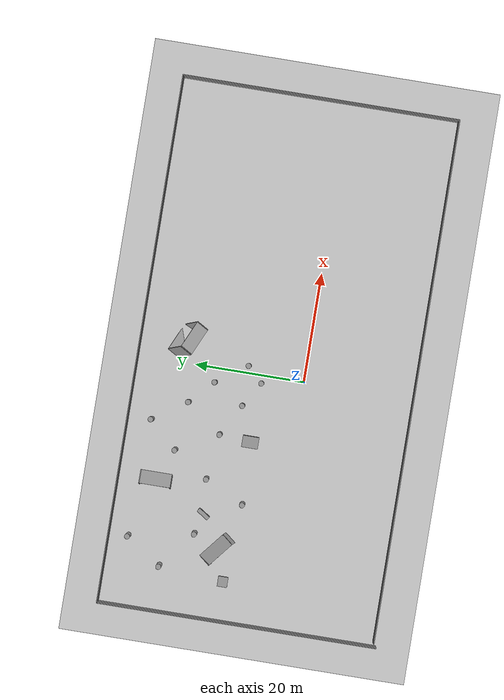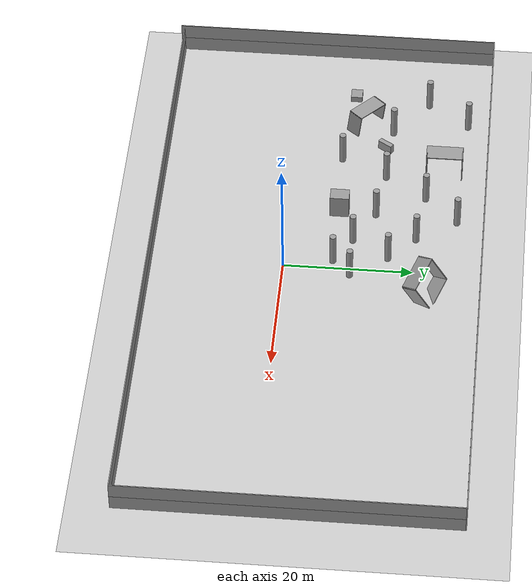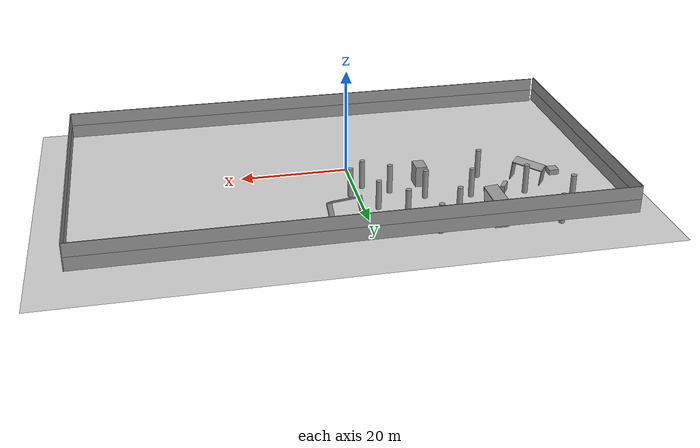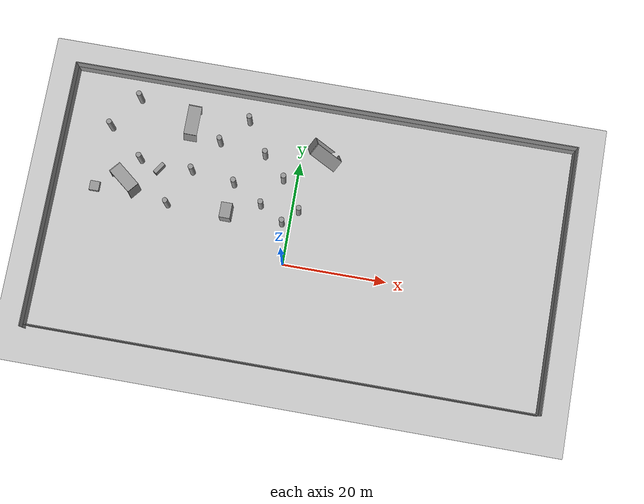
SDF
<sdf version="1.6">
 <world name="default">
  <model name="ground_plane">
   <static>1</static>
   <link name="link">
    <collision name="collision">
     <geometry><plane><normal>0 0 1</normal><size>100 100</size></plane></geometry>
     <surface><friction><ode><mu>100</mu><mu2>50</mu2></ode></friction></surface>
    </collision>
    <visual name="visual">
     <cast_shadows>0</cast_shadows>
     <geometry><plane><normal>0 0 1</normal><size>100 100</size></plane></geometry>
     <material>
      <script><uri>file://media/materials/scripts/gazebo.material</uri><name>Gazebo/Grey</name></script>
     </material>
    </visual>
   </link>
  </model>
  <model name="unit_cylinder_clone_9">
   <pose>1.3235 10.3758 2.75253 0 -0 0.004596</pose>
   <link name="link">
    <inertial>
     <mass>1</mass>
     <inertia><ixx>0.145833</ixx><ixy>0</ixy><ixz>0</ixz><iyy>0.145833</iyy><iyz>0</iyz><izz>0.125</izz></inertia>
    </inertial>
    <collision name="collision">
     <geometry><cylinder><radius>0.5</radius><length>5.50507</length></cylinder></geometry>
    </collision>
    <visual name="visual">
     <geometry><cylinder><radius>0.5</radius><length>5.50507</length></cylinder></geometry>
     <material>
      <script><name>Gazebo/Grey</name><uri>file://media/materials/scripts/gazebo.material</uri></script>
     </material>
    </visual>
   </link>
  </model>
  <model name="unit_cylinder_clone_9_clone">
   <pose>-1.44484 7.61062 2.75253 0 -0 0.00532</pose>
   <link name="link">
    <inertial>
     <mass>1</mass>
     <inertia><ixx>0.145833</ixx><ixy>0</ixy><ixz>0</ixz><iyy>0.145833</iyy><iyz>0</iyz><izz>0.125</izz></inertia>
    </inertial>
    <collision name="collision">
     <geometry><cylinder><radius>0.5</radius><length>5.50507</length></cylinder></geometry>
    </collision>
    <visual name="visual">
     <geometry><cylinder><radius>0.5</radius><length>5.50507</length></cylinder></geometry>
     <material>
      <script><name>Gazebo/Grey</name><uri>file://media/materials/scripts/gazebo.material</uri></script>
     </material>
    </visual>
   </link>
  </model>
  <model name="unit_cylinder_clone_9_clone_2">
   <pose>-5.99307 10.366 2.75253 0 -0 0.005196</pose>
   <link name="link">
    <inertial>
     <mass>1</mass>
     <inertia><ixx>0.145833</ixx><ixy>0</ixy><ixz>0</ixz><iyy>0.145833</iyy><iyz>0</iyz><izz>0.125</izz></inertia>
    </inertial>
    <collision name="collision">
     <geometry><cylinder><radius>0.5</radius><length>5.50507</length></cylinder></geometry>
    </collision>
    <visual name="visual">
     <geometry><cylinder><radius>0.5</radius><length>5.50507</length></cylinder></geometry>
     <material>
      <script><name>Gazebo/Grey</name><uri>file://media/materials/scripts/gazebo.material</uri></script>
     </material>
    </visual>
   </link>
  </model>
  <model name="unit_box_2">
   <pose>-12.2461 7.859 1.95434 1e-06 0 -0.000359</pose>
   <link name="link">
    <inertial>
     <mass>1</mass>
     <inertia>
      <ixx>0.166667</ixx>
      <ixy>0</ixy>
      <ixz>0</ixz>
      <iyy>0.166667</iyy>
      <iyz>0</iyz>
      <izz>0.166667</izz>
     </inertia>
    </inertial>
    <collision name="collision"><geometry><box><size>2.10727 2.95919 3.90868</size></box></geometry></collision>
    <visual name="visual">
     <geometry><box><size>2.10727 2.95919 3.90868</size></box></geometry>
     <material>
      <script><name>Gazebo/Grey</name><uri>file://media/materials/scripts/gazebo.material</uri></script>
     </material>
    </visual>
   </link>
  </model>
  <model name="unit_cylinder_clone_9_clone_5_clone_1">
   <pose>-11.7903 13.5739 2.75253 0 -0 0.005769</pose>
   <link name="link">
    <inertial>
     <mass>1</mass>
     <inertia><ixx>0.145833</ixx><ixy>0</ixy><ixz>0</ixz><iyy>0.145833</iyy><iyz>0</iyz><izz>0.125</izz></inertia>
    </inertial>
    <collision name="collision">
     <geometry><cylinder><radius>0.5</radius><length>5.50507</length></cylinder></geometry>
    </collision>
    <visual name="visual">
     <geometry><cylinder><radius>0.5</radius><length>5.50507</length></cylinder></geometry>
     <material>
      <script><name>Gazebo/Grey</name><uri>file://media/materials/scripts/gazebo.material</uri></script>
     </material>
    </visual>
   </link>
  </model>
  <model name="vRoom_clone_3_clone_clone_9_clone_0_clone">
   <link name="Wall_0">
    <pose>-2.8 -0 -1e-06 -0 -0 -1.5708</pose>
    <velocity_decay><linear>0</linear><angular>0</angular></velocity_decay>
    <visual name="Wall_0_Visual">
     <pose>0 0 1.25 0 -0 0</pose>
     <geometry><box><size>5.75 0.15 2.5</size></box></geometry>
     <material>
      <script><uri>file://media/materials/scripts/gazebo.material</uri><name>Gazebo/Grey</name></script>
      <ambient>1 1 1 1</ambient>
     </material>
    </visual>
    <collision name="Wall_0_Collision">
     <pose>0 0 1.25 0 -0 0</pose>
     <geometry><box><size>5.75 0.15 2.5</size></box></geometry>
     <surface>
      <friction>
       <ode><mu>1</mu><mu2>1</mu2><fdir1>0 0 0</fdir1><slip1>0</slip1><slip2>0</slip2></ode>
       <torsional>
        <coefficient>1</coefficient>
        <patch_radius>0</patch_radius>
        <surface_radius>0</surface_radius>
        <use_patch_radius>1</use_patch_radius>
        <ode><slip>0</slip></ode>
       </torsional>
      </friction>
      <bounce><restitution_coefficient>0</restitution_coefficient><threshold>1e+06</threshold></bounce>
      <contact>
       <collide_without_contact>0</collide_without_contact>
       <collide_without_contact_bitmask>1</collide_without_contact_bitmask>
       <collide_bitmask>1</collide_bitmask>
       <ode>
        <soft_cfm>0</soft_cfm>
        <soft_erp>0.2</soft_erp>
        <kp>1e+13</kp>
        <kd>1</kd>
        <max_vel>0.01</max_vel>
        <min_depth>0</min_depth>
       </ode>
       <bullet>
        <split_impulse>1</split_impulse>
        <split_impulse_penetration_threshold>-0.01</split_impulse_penetration_threshold>
        <soft_cfm>0</soft_cfm>
        <soft_erp>0.2</soft_erp>
        <kp>1e+13</kp>
        <kd>1</kd>
       </bullet>
      </contact>
     </surface>
    </collision>
   </link>
   <link name="Wall_1">
    <pose>2e-06 -2.8 2e-06 0 -0 0</pose>
    <velocity_decay><linear>0</linear><angular>0</angular></velocity_decay>
    <visual name="Wall_1_Visual">
     <pose>0 0 1.25 0 -0 0</pose>
     <geometry><box><size>5.75 0.15 2.5</size></box></geometry>
     <material>
      <script><uri>file://media/materials/scripts/gazebo.material</uri><name>Gazebo/Grey</name></script>
      <ambient>1 1 1 1</ambient>
     </material>
    </visual>
    <collision name="Wall_1_Collision">
     <pose>0 0 1.25 0 -0 0</pose>
     <geometry><box><size>5.75 0.15 2.5</size></box></geometry>
     <surface>
      <friction>
       <ode><mu>1</mu><mu2>1</mu2><fdir1>0 0 0</fdir1><slip1>0</slip1><slip2>0</slip2></ode>
       <torsional>
        <coefficient>1</coefficient>
        <patch_radius>0</patch_radius>
        <surface_radius>0</surface_radius>
        <use_patch_radius>1</use_patch_radius>
        <ode><slip>0</slip></ode>
       </torsional>
      </friction>
      <bounce><restitution_coefficient>0</restitution_coefficient><threshold>1e+06</threshold></bounce>
      <contact>
       <collide_without_contact>0</collide_without_contact>
       <collide_without_contact_bitmask>1</collide_without_contact_bitmask>
       <collide_bitmask>1</collide_bitmask>
       <ode>
        <soft_cfm>0</soft_cfm>
        <soft_erp>0.2</soft_erp>
        <kp>1e+13</kp>
        <kd>1</kd>
        <max_vel>0.01</max_vel>
        <min_depth>0</min_depth>
       </ode>
       <bullet>
        <split_impulse>1</split_impulse>
        <split_impulse_penetration_threshold>-0.01</split_impulse_penetration_threshold>
        <soft_cfm>0</soft_cfm>
        <soft_erp>0.2</soft_erp>
        <kp>1e+13</kp>
        <kd>1</kd>
       </bullet>
      </contact>
     </surface>
    </collision>
   </link>
   <link name="Wall_2">
    <pose>2.8 0 1e-06 0 -0 1.5708</pose>
    <velocity_decay><linear>0</linear><angular>0</angular></velocity_decay>
    <visual name="Wall_2_Visual">
     <pose>0 0 1.25 0 -0 0</pose>
     <geometry><box><size>5.75 0.15 2.5</size></box></geometry>
     <material>
      <script><uri>file://media/materials/scripts/gazebo.material</uri><name>Gazebo/Grey</name></script>
      <ambient>1 1 1 1</ambient>
     </material>
    </visual>
    <collision name="Wall_2_Collision">
     <pose>0 0 1.25 0 -0 0</pose>
     <geometry><box><size>5.75 0.15 2.5</size></box></geometry>
     <surface>
      <friction>
       <ode><mu>1</mu><mu2>1</mu2><fdir1>0 0 0</fdir1><slip1>0</slip1><slip2>0</slip2></ode>
       <torsional>
        <coefficient>1</coefficient>
        <patch_radius>0</patch_radius>
        <surface_radius>0</surface_radius>
        <use_patch_radius>1</use_patch_radius>
        <ode><slip>0</slip></ode>
       </torsional>
      </friction>
      <bounce><restitution_coefficient>0</restitution_coefficient><threshold>1e+06</threshold></bounce>
      <contact>
       <collide_without_contact>0</collide_without_contact>
       <collide_without_contact_bitmask>1</collide_without_contact_bitmask>
       <collide_bitmask>1</collide_bitmask>
       <ode>
        <soft_cfm>0</soft_cfm>
        <soft_erp>0.2</soft_erp>
        <kp>1e+13</kp>
        <kd>1</kd>
        <max_vel>0.01</max_vel>
        <min_depth>0</min_depth>
       </ode>
       <bullet>
        <split_impulse>1</split_impulse>
        <split_impulse_penetration_threshold>-0.01</split_impulse_penetration_threshold>
        <soft_cfm>0</soft_cfm>
        <soft_erp>0.2</soft_erp>
        <kp>1e+13</kp>
        <kd>1</kd>
       </bullet>
      </contact>
     </surface>
    </collision>
   </link>
   <link name="Wall_3">
    <pose>-2e-06 2.8 -2e-06 0 -0 3.14159</pose>
    <velocity_decay><linear>0</linear><angular>0</angular></velocity_decay>
    <visual name="Wall_3_Visual">
     <pose>0 0 1.25 0 -0 0</pose>
     <geometry><box><size>5.75 0.15 2.5</size></box></geometry>
     <material>
      <script><uri>file://media/materials/scripts/gazebo.material</uri><name>Gazebo/Grey</name></script>
      <ambient>1 1 1 1</ambient>
     </material>
    </visual>
    <collision name="Wall_3_Collision">
     <pose>0 0 1.25 0 -0 0</pose>
     <geometry><box><size>5.75 0.15 2.5</size></box></geometry>
     <surface>
      <friction>
       <ode><mu>1</mu><mu2>1</mu2><fdir1>0 0 0</fdir1><slip1>0</slip1><slip2>0</slip2></ode>
       <torsional>
        <coefficient>1</coefficient>
        <patch_radius>0</patch_radius>
        <surface_radius>0</surface_radius>
        <use_patch_radius>1</use_patch_radius>
        <ode><slip>0</slip></ode>
       </torsional>
      </friction>
      <bounce><restitution_coefficient>0</restitution_coefficient><threshold>1e+06</threshold></bounce>
      <contact>
       <collide_without_contact>0</collide_without_contact>
       <collide_without_contact_bitmask>1</collide_without_contact_bitmask>
       <collide_bitmask>1</collide_bitmask>
       <ode>
        <soft_cfm>0</soft_cfm>
        <soft_erp>0.2</soft_erp>
        <kp>1e+13</kp>
        <kd>1</kd>
        <max_vel>0.01</max_vel>
        <min_depth>0</min_depth>
       </ode>
       <bullet>
        <split_impulse>1</split_impulse>
        <split_impulse_penetration_threshold>-0.01</split_impulse_penetration_threshold>
        <soft_cfm>0</soft_cfm>
        <soft_erp>0.2</soft_erp>
        <kp>1e+13</kp>
        <kd>1</kd>
       </bullet>
      </contact>
     </surface>
    </collision>
   </link>
   <static>1</static>
   <pose>-31.5829 11.4901 0.534522 -1.11103 -1.4406 1.99895</pose>
  </model>
  <model name="unit_cylinder_clone_7_clone_1_clone_5">
   <pose>-23.6738 7.47553 2.75253 0 -0 0.005046</pose>
   <link name="link">
    <inertial>
     <mass>1</mass>
     <inertia><ixx>0.145833</ixx><ixy>0</ixy><ixz>0</ixz><iyy>0.145833</iyy><iyz>0</iyz><izz>0.125</izz></inertia>
    </inertial>
    <collision name="collision">
     <geometry><cylinder><radius>0.5</radius><length>5.50507</length></cylinder></geometry>
    </collision>
    <visual name="visual">
     <geometry><cylinder><radius>0.5</radius><length>5.50507</length></cylinder></geometry>
     <material>
      <script><name>Gazebo/Grey</name><uri>file://media/materials/scripts/gazebo.material</uri></script>
     </material>
    </visual>
   </link>
  </model>
  <model name="unit_box_clone_clone_clone_clone">
   <pose>-26.5866 14.1685 0.788231 -4e-06 0 -0.577815</pose>
   <link name="link">
    <inertial>
     <mass>1</mass>
     <inertia>
      <ixx>0.166667</ixx>
      <ixy>0</ixy>
      <ixz>0</ixz>
      <iyy>0.166667</iyy>
      <iyz>0</iyz>
      <izz>0.166667</izz>
     </inertia>
    </inertial>
    <collision name="collision"><geometry><box><size>0.770315 2.44518 1.57647</size></box></geometry></collision>
    <visual name="visual">
     <geometry><box><size>0.770315 2.44518 1.57647</size></box></geometry>
     <material>
      <script><name>Gazebo/Grey</name><uri>file://media/materials/scripts/gazebo.material</uri></script>
     </material>
    </visual>
   </link>
  </model>
  <model name="unit_cylinder_clone_7_clone_1_clone_clone_0">
   <pose>-30.2569 15.1941 2.75253 0 -0 0.004867</pose>
   <link name="link">
    <inertial>
     <mass>1</mass>
     <inertia><ixx>0.145833</ixx><ixy>0</ixy><ixz>0</ixz><iyy>0.145833</iyy><iyz>0</iyz><izz>0.125</izz></inertia>
    </inertial>
    <collision name="collision">
     <geometry><cylinder><radius>0.5</radius><length>5.50507</length></cylinder></geometry>
    </collision>
    <visual name="visual">
     <geometry><cylinder><radius>0.5</radius><length>5.50507</length></cylinder></geometry>
     <material>
      <script><name>Gazebo/Grey</name><uri>file://media/materials/scripts/gazebo.material</uri></script>
     </material>
    </visual>
   </link>
  </model>
  <model name="unit_box_1_clone_clone">
   <pose>-38.2042 8.72778 0.499994 -7e-06 0 0</pose>
   <link name="link">
    <inertial>
     <mass>1</mass>
     <inertia>
      <ixx>0.166667</ixx>
      <ixy>0</ixy>
      <ixz>0</ixz>
      <iyy>0.166667</iyy>
      <iyz>0</iyz>
      <izz>0.166667</izz>
     </inertia>
    </inertial>
    <collision name="collision"><geometry><box><size>1.86589 1.81745 1</size></box></geometry></collision>
    <visual name="visual">
     <geometry><box><size>1.86589 1.81745 1</size></box></geometry>
     <material>
      <script><name>Gazebo/Grey</name><uri>file://media/materials/scripts/gazebo.material</uri></script>
     </material>
    </visual>
   </link>
  </model>
  <model name="unit_cylinder_clone_7_clone_1_clone_2_clone_0">
   <pose>-2.59372 15.9909 2.75253 0 -0 0.00451</pose>
   <link name="link">
    <inertial>
     <mass>1</mass>
     <inertia><ixx>0.145833</ixx><ixy>0</ixy><ixz>0</ixz><iyy>0.145833</iyy><iyz>0</iyz><izz>0.125</izz></inertia>
    </inertial>
    <collision name="collision">
     <geometry><cylinder><radius>0.5</radius><length>5.50507</length></cylinder></geometry>
    </collision>
    <visual name="visual">
     <geometry><cylinder><radius>0.5</radius><length>5.50507</length></cylinder></geometry>
     <material>
      <script><name>Gazebo/Grey</name><uri>file://media/materials/scripts/gazebo.material</uri></script>
     </material>
    </visual>
   </link>
  </model>
  <model name="PaperTest1_clone">
   <pose>3 5 2.5 0 -0 0</pose>
   <link name="Wall_13">
    <collision name="Wall_13_Collision">
     <geometry><box><size>95.5 0.15 2.5</size></box></geometry>
     <pose>0 0 1.25 0 -0 0</pose>
    </collision>
    <visual name="Wall_13_Visual">
     <pose>0 0 1.25 0 -0 0</pose>
     <geometry><box><size>95.5 0.15 2.5</size></box></geometry>
     <material>
      <script><uri>file://media/materials/scripts/gazebo.material</uri><name>Gazebo/Grey</name></script>
      <ambient>1 1 1 1</ambient>
     </material>
     <meta><layer>0</layer></meta>
    </visual>
    <pose>0.375 -24.925 0 0 -0 0</pose>
   </link>
   <link name="Wall_14">
    <collision name="Wall_14_Collision">
     <geometry><box><size>50.5 0.15 2.5</size></box></geometry>
     <pose>0 0 1.25 0 -0 0</pose>
    </collision>
    <visual name="Wall_14_Visual">
     <pose>0 0 1.25 0 -0 0</pose>
     <geometry><box><size>50.5 0.15 2.5</size></box></geometry>
     <material>
      <script><uri>file://media/materials/scripts/gazebo.material</uri><name>Gazebo/Grey</name></script>
      <ambient>1 1 1 1</ambient>
     </material>
     <meta><layer>0</layer></meta>
    </visual>
    <pose>48.05 0.25 0 0 -0 1.5708</pose>
   </link>
   <link name="Wall_15">
    <collision name="Wall_15_Collision">
     <geometry><box><size>96.25 0.15 2.5</size></box></geometry>
     <pose>0 0 1.25 0 -0 0</pose>
    </collision>
    <visual name="Wall_15_Visual">
     <pose>0 0 1.25 0 -0 0</pose>
     <geometry><box><size>96.25 0.15 2.5</size></box></geometry>
     <material>
      <script><uri>file://media/materials/scripts/gazebo.material</uri><name>Gazebo/Grey</name></script>
      <ambient>1 1 1 1</ambient>
     </material>
     <meta><layer>0</layer></meta>
    </visual>
    <pose>-0 25.425 0 0 -0 3.14159</pose>
   </link>
   <link name="Wall_16">
    <collision name="Wall_16_Collision">
     <geometry><box><size>51 0.15 2.5</size></box></geometry>
     <pose>0 0 1.25 0 -0 0</pose>
    </collision>
    <visual name="Wall_16_Visual">
     <pose>0 0 1.25 0 -0 0</pose>
     <geometry><box><size>51 0.15 2.5</size></box></geometry>
     <material>
      <script><uri>file://media/materials/scripts/gazebo.material</uri><name>Gazebo/Grey</name></script>
      <ambient>1 1 1 1</ambient>
     </material>
     <meta><layer>0</layer></meta>
    </visual>
    <pose>-48.05 0 0 0 -0 -1.5708</pose>
   </link>
   <static>1</static>
  </model>
  <model name="PaperTest1_clone_0">
   <pose>3 5 5 0 -0 0</pose>
   <link name="Wall_13">
    <collision name="Wall_13_Collision">
     <geometry><box><size>95.5 0.15 2.5</size></box></geometry>
     <pose>0 0 1.25 0 -0 0</pose>
    </collision>
    <visual name="Wall_13_Visual">
     <pose>0 0 1.25 0 -0 0</pose>
     <geometry><box><size>95.5 0.15 2.5</size></box></geometry>
     <material>
      <script><uri>file://media/materials/scripts/gazebo.material</uri><name>Gazebo/Grey</name></script>
      <ambient>1 1 1 1</ambient>
     </material>
     <meta><layer>0</layer></meta>
    </visual>
    <pose>0.375 -24.925 0 0 -0 0</pose>
   </link>
   <link name="Wall_14">
    <collision name="Wall_14_Collision">
     <geometry><box><size>50.5 0.15 2.5</size></box></geometry>
     <pose>0 0 1.25 0 -0 0</pose>
    </collision>
    <visual name="Wall_14_Visual">
     <pose>0 0 1.25 0 -0 0</pose>
     <geometry><box><size>50.5 0.15 2.5</size></box></geometry>
     <material>
      <script><uri>file://media/materials/scripts/gazebo.material</uri><name>Gazebo/Grey</name></script>
      <ambient>1 1 1 1</ambient>
     </material>
     <meta><layer>0</layer></meta>
    </visual>
    <pose>48.05 0.25 0 0 -0 1.5708</pose>
   </link>
   <link name="Wall_15">
    <collision name="Wall_15_Collision">
     <geometry><box><size>96.25 0.15 2.5</size></box></geometry>
     <pose>0 0 1.25 0 -0 0</pose>
    </collision>
    <visual name="Wall_15_Visual">
     <pose>0 0 1.25 0 -0 0</pose>
     <geometry><box><size>96.25 0.15 2.5</size></box></geometry>
     <material>
      <script><uri>file://media/materials/scripts/gazebo.material</uri><name>Gazebo/Grey</name></script>
      <ambient>1 1 1 1</ambient>
     </material>
     <meta><layer>0</layer></meta>
    </visual>
    <pose>-0 25.425 0 0 -0 3.14159</pose>
   </link>
   <link name="Wall_16">
    <collision name="Wall_16_Collision">
     <geometry><box><size>51 0.15 2.5</size></box></geometry>
     <pose>0 0 1.25 0 -0 0</pose>
    </collision>
    <visual name="Wall_16_Visual">
     <pose>0 0 1.25 0 -0 0</pose>
     <geometry><box><size>51 0.15 2.5</size></box></geometry>
     <material>
      <script><uri>file://media/materials/scripts/gazebo.material</uri><name>Gazebo/Grey</name></script>
      <ambient>1 1 1 1</ambient>
     </material>
     <meta><layer>0</layer></meta>
    </visual>
    <pose>-48.05 0 0 0 -0 -1.5708</pose>
   </link>
   <static>1</static>
  </model>
  <model name="vRoom_clone_3_clone_clone_9_clone_clone_clone_clone">
   <link name="Wall_0">
    <pose>-2.8 -0 -1e-06 -0 -0 -1.5708</pose>
    <velocity_decay><linear>0</linear><angular>0</angular></velocity_decay>
    <visual name="Wall_0_Visual">
     <pose>0 0 1.25 0 -0 0</pose>
     <geometry><box><size>5.75 0.15 2.5</size></box></geometry>
     <material>
      <script><uri>file://media/materials/scripts/gazebo.material</uri><name>Gazebo/Grey</name></script>
      <ambient>1 1 1 1</ambient>
     </material>
    </visual>
    <collision name="Wall_0_Collision">
     <pose>0 0 1.25 0 -0 0</pose>
     <geometry><box><size>5.75 0.15 2.5</size></box></geometry>
     <surface>
      <friction>
       <ode><mu>1</mu><mu2>1</mu2><fdir1>0 0 0</fdir1><slip1>0</slip1><slip2>0</slip2></ode>
       <torsional>
        <coefficient>1</coefficient>
        <patch_radius>0</patch_radius>
        <surface_radius>0</surface_radius>
        <use_patch_radius>1</use_patch_radius>
        <ode><slip>0</slip></ode>
       </torsional>
      </friction>
      <bounce><restitution_coefficient>0</restitution_coefficient><threshold>1e+06</threshold></bounce>
      <contact>
       <collide_without_contact>0</collide_without_contact>
       <collide_without_contact_bitmask>1</collide_without_contact_bitmask>
       <collide_bitmask>1</collide_bitmask>
       <ode>
        <soft_cfm>0</soft_cfm>
        <soft_erp>0.2</soft_erp>
        <kp>1e+13</kp>
        <kd>1</kd>
        <max_vel>0.01</max_vel>
        <min_depth>0</min_depth>
       </ode>
       <bullet>
        <split_impulse>1</split_impulse>
        <split_impulse_penetration_threshold>-0.01</split_impulse_penetration_threshold>
        <soft_cfm>0</soft_cfm>
        <soft_erp>0.2</soft_erp>
        <kp>1e+13</kp>
        <kd>1</kd>
       </bullet>
      </contact>
     </surface>
    </collision>
   </link>
   <link name="Wall_1">
    <pose>2e-06 -2.8 2e-06 0 -0 0</pose>
    <velocity_decay><linear>0</linear><angular>0</angular></velocity_decay>
    <visual name="Wall_1_Visual">
     <pose>0 0 1.25 0 -0 0</pose>
     <geometry><box><size>5.75 0.15 2.5</size></box></geometry>
     <material>
      <script><uri>file://media/materials/scripts/gazebo.material</uri><name>Gazebo/Grey</name></script>
      <ambient>1 1 1 1</ambient>
     </material>
    </visual>
    <collision name="Wall_1_Collision">
     <pose>0 0 1.25 0 -0 0</pose>
     <geometry><box><size>5.75 0.15 2.5</size></box></geometry>
     <surface>
      <friction>
       <ode><mu>1</mu><mu2>1</mu2><fdir1>0 0 0</fdir1><slip1>0</slip1><slip2>0</slip2></ode>
       <torsional>
        <coefficient>1</coefficient>
        <patch_radius>0</patch_radius>
        <surface_radius>0</surface_radius>
        <use_patch_radius>1</use_patch_radius>
        <ode><slip>0</slip></ode>
       </torsional>
      </friction>
      <bounce><restitution_coefficient>0</restitution_coefficient><threshold>1e+06</threshold></bounce>
      <contact>
       <collide_without_contact>0</collide_without_contact>
       <collide_without_contact_bitmask>1</collide_without_contact_bitmask>
       <collide_bitmask>1</collide_bitmask>
       <ode>
        <soft_cfm>0</soft_cfm>
        <soft_erp>0.2</soft_erp>
        <kp>1e+13</kp>
        <kd>1</kd>
        <max_vel>0.01</max_vel>
        <min_depth>0</min_depth>
       </ode>
       <bullet>
        <split_impulse>1</split_impulse>
        <split_impulse_penetration_threshold>-0.01</split_impulse_penetration_threshold>
        <soft_cfm>0</soft_cfm>
        <soft_erp>0.2</soft_erp>
        <kp>1e+13</kp>
        <kd>1</kd>
       </bullet>
      </contact>
     </surface>
    </collision>
   </link>
   <link name="Wall_2">
    <pose>2.8 0 1e-06 0 -0 1.5708</pose>
    <velocity_decay><linear>0</linear><angular>0</angular></velocity_decay>
    <visual name="Wall_2_Visual">
     <pose>0 0 1.25 0 -0 0</pose>
     <geometry><box><size>5.75 0.15 2.5</size></box></geometry>
     <material>
      <script><uri>file://media/materials/scripts/gazebo.material</uri><name>Gazebo/Grey</name></script>
      <ambient>1 1 1 1</ambient>
     </material>
    </visual>
    <collision name="Wall_2_Collision">
     <pose>0 0 1.25 0 -0 0</pose>
     <geometry><box><size>5.75 0.15 2.5</size></box></geometry>
     <surface>
      <friction>
       <ode><mu>1</mu><mu2>1</mu2><fdir1>0 0 0</fdir1><slip1>0</slip1><slip2>0</slip2></ode>
       <torsional>
        <coefficient>1</coefficient>
        <patch_radius>0</patch_radius>
        <surface_radius>0</surface_radius>
        <use_patch_radius>1</use_patch_radius>
        <ode><slip>0</slip></ode>
       </torsional>
      </friction>
      <bounce><restitution_coefficient>0</restitution_coefficient><threshold>1e+06</threshold></bounce>
      <contact>
       <collide_without_contact>0</collide_without_contact>
       <collide_without_contact_bitmask>1</collide_without_contact_bitmask>
       <collide_bitmask>1</collide_bitmask>
       <ode>
        <soft_cfm>0</soft_cfm>
        <soft_erp>0.2</soft_erp>
        <kp>1e+13</kp>
        <kd>1</kd>
        <max_vel>0.01</max_vel>
        <min_depth>0</min_depth>
       </ode>
       <bullet>
        <split_impulse>1</split_impulse>
        <split_impulse_penetration_threshold>-0.01</split_impulse_penetration_threshold>
        <soft_cfm>0</soft_cfm>
        <soft_erp>0.2</soft_erp>
        <kp>1e+13</kp>
        <kd>1</kd>
       </bullet>
      </contact>
     </surface>
    </collision>
   </link>
   <link name="Wall_3">
    <pose>-2e-06 2.8 -2e-06 0 -0 3.14159</pose>
    <velocity_decay><linear>0</linear><angular>0</angular></velocity_decay>
    <visual name="Wall_3_Visual">
     <pose>0 0 1.25 0 -0 0</pose>
     <geometry><box><size>5.75 0.15 2.5</size></box></geometry>
     <material>
      <script><uri>file://media/materials/scripts/gazebo.material</uri><name>Gazebo/Grey</name></script>
      <ambient>1 1 1 1</ambient>
     </material>
    </visual>
    <collision name="Wall_3_Collision">
     <pose>0 0 1.25 0 -0 0</pose>
     <geometry><box><size>5.75 0.15 2.5</size></box></geometry>
     <surface>
      <friction>
       <ode><mu>1</mu><mu2>1</mu2><fdir1>0 0 0</fdir1><slip1>0</slip1><slip2>0</slip2></ode>
       <torsional>
        <coefficient>1</coefficient>
        <patch_radius>0</patch_radius>
        <surface_radius>0</surface_radius>
        <use_patch_radius>1</use_patch_radius>
        <ode><slip>0</slip></ode>
       </torsional>
      </friction>
      <bounce><restitution_coefficient>0</restitution_coefficient><threshold>1e+06</threshold></bounce>
      <contact>
       <collide_without_contact>0</collide_without_contact>
       <collide_without_contact_bitmask>1</collide_without_contact_bitmask>
       <collide_bitmask>1</collide_bitmask>
       <ode>
        <soft_cfm>0</soft_cfm>
        <soft_erp>0.2</soft_erp>
        <kp>1e+13</kp>
        <kd>1</kd>
        <max_vel>0.01</max_vel>
        <min_depth>0</min_depth>
       </ode>
       <bullet>
        <split_impulse>1</split_impulse>
        <split_impulse_penetration_threshold>-0.01</split_impulse_penetration_threshold>
        <soft_cfm>0</soft_cfm>
        <soft_erp>0.2</soft_erp>
        <kp>1e+13</kp>
        <kd>1</kd>
       </bullet>
      </contact>
     </surface>
    </collision>
   </link>
   <static>1</static>
   <pose>3.70388 20.9968 2.16038 1.23249 -0.326147 2.72159</pose>
  </model>
  <model name="unit_cylinder_clone_8_clone_0">
   <pose>-6.8848 20.1006 2.75253 0 -0 0.004478</pose>
   <link name="link">
    <inertial>
     <mass>1</mass>
     <inertia><ixx>0.145833</ixx><ixy>0</ixy><ixz>0</ixz><iyy>0.145833</iyy><iyz>0</iyz><izz>0.125</izz></inertia>
    </inertial>
    <collision name="collision">
     <geometry><cylinder><radius>0.5</radius><length>5.50507</length></cylinder></geometry>
    </collision>
    <visual name="visual">
     <geometry><cylinder><radius>0.5</radius><length>5.50507</length></cylinder></geometry>
     <material>
      <script><name>Gazebo/Grey</name><uri>file://media/materials/scripts/gazebo.material</uri></script>
     </material>
    </visual>
   </link>
  </model>
  <model name="unit_cylinder_clone_8_clone_1">
   <pose>-11.0291 26.2528 2.75253 0 -0 0.004359</pose>
   <link name="link">
    <inertial>
     <mass>1</mass>
     <inertia><ixx>0.145833</ixx><ixy>0</ixy><ixz>0</ixz><iyy>0.145833</iyy><iyz>0</iyz><izz>0.125</izz></inertia>
    </inertial>
    <collision name="collision">
     <geometry><cylinder><radius>0.5</radius><length>5.50507</length></cylinder></geometry>
    </collision>
    <visual name="visual">
     <geometry><cylinder><radius>0.5</radius><length>5.50507</length></cylinder></geometry>
     <material>
      <script><name>Gazebo/Grey</name><uri>file://media/materials/scripts/gazebo.material</uri></script>
     </material>
    </visual>
   </link>
  </model>
  <model name="unit_cylinder_clone_8_clone_2">
   <pose>-15.8595 21.1184 2.75253 0 -0 0.004481</pose>
   <link name="link">
    <inertial>
     <mass>1</mass>
     <inertia><ixx>0.145833</ixx><ixy>0</ixy><ixz>0</ixz><iyy>0.145833</iyy><iyz>0</iyz><izz>0.125</izz></inertia>
    </inertial>
    <collision name="collision">
     <geometry><cylinder><radius>0.5</radius><length>5.50507</length></cylinder></geometry>
    </collision>
    <visual name="visual">
     <geometry><cylinder><radius>0.5</radius><length>5.50507</length></cylinder></geometry>
     <material>
      <script><name>Gazebo/Grey</name><uri>file://media/materials/scripts/gazebo.material</uri></script>
     </material>
    </visual>
   </link>
  </model>
  <model name="vRoom_clone_3_clone_clone_9_clone_3_clone">
   <link name="Wall_0">
    <pose>-2.8 -0 -1e-06 -0 -0 -1.5708</pose>
    <velocity_decay><linear>0</linear><angular>0</angular></velocity_decay>
    <visual name="Wall_0_Visual">
     <pose>0 0 1.25 0 -0 0</pose>
     <geometry><box><size>5.75 0.15 2.5</size></box></geometry>
     <material>
      <script><uri>file://media/materials/scripts/gazebo.material</uri><name>Gazebo/Grey</name></script>
      <ambient>1 1 1 1</ambient>
     </material>
    </visual>
    <collision name="Wall_0_Collision">
     <pose>0 0 1.25 0 -0 0</pose>
     <geometry><box><size>5.75 0.15 2.5</size></box></geometry>
     <surface>
      <friction>
       <ode><mu>1</mu><mu2>1</mu2><fdir1>0 0 0</fdir1><slip1>0</slip1><slip2>0</slip2></ode>
       <torsional>
        <coefficient>1</coefficient>
        <patch_radius>0</patch_radius>
        <surface_radius>0</surface_radius>
        <use_patch_radius>1</use_patch_radius>
        <ode><slip>0</slip></ode>
       </torsional>
      </friction>
      <bounce><restitution_coefficient>0</restitution_coefficient><threshold>1e+06</threshold></bounce>
      <contact>
       <collide_without_contact>0</collide_without_contact>
       <collide_without_contact_bitmask>1</collide_without_contact_bitmask>
       <collide_bitmask>1</collide_bitmask>
       <ode>
        <soft_cfm>0</soft_cfm>
        <soft_erp>0.2</soft_erp>
        <kp>1e+13</kp>
        <kd>1</kd>
        <max_vel>0.01</max_vel>
        <min_depth>0</min_depth>
       </ode>
       <bullet>
        <split_impulse>1</split_impulse>
        <split_impulse_penetration_threshold>-0.01</split_impulse_penetration_threshold>
        <soft_cfm>0</soft_cfm>
        <soft_erp>0.2</soft_erp>
        <kp>1e+13</kp>
        <kd>1</kd>
       </bullet>
      </contact>
     </surface>
    </collision>
   </link>
   <link name="Wall_1">
    <pose>2e-06 -2.8 2e-06 0 -0 0</pose>
    <velocity_decay><linear>0</linear><angular>0</angular></velocity_decay>
    <visual name="Wall_1_Visual">
     <pose>0 0 1.25 0 -0 0</pose>
     <geometry><box><size>5.75 0.15 2.5</size></box></geometry>
     <material>
      <script><uri>file://media/materials/scripts/gazebo.material</uri><name>Gazebo/Grey</name></script>
      <ambient>1 1 1 1</ambient>
     </material>
    </visual>
    <collision name="Wall_1_Collision">
     <pose>0 0 1.25 0 -0 0</pose>
     <geometry><box><size>5.75 0.15 2.5</size></box></geometry>
     <surface>
      <friction>
       <ode><mu>1</mu><mu2>1</mu2><fdir1>0 0 0</fdir1><slip1>0</slip1><slip2>0</slip2></ode>
       <torsional>
        <coefficient>1</coefficient>
        <patch_radius>0</patch_radius>
        <surface_radius>0</surface_radius>
        <use_patch_radius>1</use_patch_radius>
        <ode><slip>0</slip></ode>
       </torsional>
      </friction>
      <bounce><restitution_coefficient>0</restitution_coefficient><threshold>1e+06</threshold></bounce>
      <contact>
       <collide_without_contact>0</collide_without_contact>
       <collide_without_contact_bitmask>1</collide_without_contact_bitmask>
       <collide_bitmask>1</collide_bitmask>
       <ode>
        <soft_cfm>0</soft_cfm>
        <soft_erp>0.2</soft_erp>
        <kp>1e+13</kp>
        <kd>1</kd>
        <max_vel>0.01</max_vel>
        <min_depth>0</min_depth>
       </ode>
       <bullet>
        <split_impulse>1</split_impulse>
        <split_impulse_penetration_threshold>-0.01</split_impulse_penetration_threshold>
        <soft_cfm>0</soft_cfm>
        <soft_erp>0.2</soft_erp>
        <kp>1e+13</kp>
        <kd>1</kd>
       </bullet>
      </contact>
     </surface>
    </collision>
   </link>
   <link name="Wall_2">
    <pose>2.8 0 1e-06 0 -0 1.5708</pose>
    <velocity_decay><linear>0</linear><angular>0</angular></velocity_decay>
    <visual name="Wall_2_Visual">
     <pose>0 0 1.25 0 -0 0</pose>
     <geometry><box><size>5.75 0.15 2.5</size></box></geometry>
     <material>
      <script><uri>file://media/materials/scripts/gazebo.material</uri><name>Gazebo/Grey</name></script>
      <ambient>1 1 1 1</ambient>
     </material>
    </visual>
    <collision name="Wall_2_Collision">
     <pose>0 0 1.25 0 -0 0</pose>
     <geometry><box><size>5.75 0.15 2.5</size></box></geometry>
     <surface>
      <friction>
       <ode><mu>1</mu><mu2>1</mu2><fdir1>0 0 0</fdir1><slip1>0</slip1><slip2>0</slip2></ode>
       <torsional>
        <coefficient>1</coefficient>
        <patch_radius>0</patch_radius>
        <surface_radius>0</surface_radius>
        <use_patch_radius>1</use_patch_radius>
        <ode><slip>0</slip></ode>
       </torsional>
      </friction>
      <bounce><restitution_coefficient>0</restitution_coefficient><threshold>1e+06</threshold></bounce>
      <contact>
       <collide_without_contact>0</collide_without_contact>
       <collide_without_contact_bitmask>1</collide_without_contact_bitmask>
       <collide_bitmask>1</collide_bitmask>
       <ode>
        <soft_cfm>0</soft_cfm>
        <soft_erp>0.2</soft_erp>
        <kp>1e+13</kp>
        <kd>1</kd>
        <max_vel>0.01</max_vel>
        <min_depth>0</min_depth>
       </ode>
       <bullet>
        <split_impulse>1</split_impulse>
        <split_impulse_penetration_threshold>-0.01</split_impulse_penetration_threshold>
        <soft_cfm>0</soft_cfm>
        <soft_erp>0.2</soft_erp>
        <kp>1e+13</kp>
        <kd>1</kd>
       </bullet>
      </contact>
     </surface>
    </collision>
   </link>
   <link name="Wall_3">
    <pose>-2e-06 2.8 -2e-06 0 -0 3.14159</pose>
    <velocity_decay><linear>0</linear><angular>0</angular></velocity_decay>
    <visual name="Wall_3_Visual">
     <pose>0 0 1.25 0 -0 0</pose>
     <geometry><box><size>5.75 0.15 2.5</size></box></geometry>
     <material>
      <script><uri>file://media/materials/scripts/gazebo.material</uri><name>Gazebo/Grey</name></script>
      <ambient>1 1 1 1</ambient>
     </material>
    </visual>
    <collision name="Wall_3_Collision">
     <pose>0 0 1.25 0 -0 0</pose>
     <geometry><box><size>5.75 0.15 2.5</size></box></geometry>
     <surface>
      <friction>
       <ode><mu>1</mu><mu2>1</mu2><fdir1>0 0 0</fdir1><slip1>0</slip1><slip2>0</slip2></ode>
       <torsional>
        <coefficient>1</coefficient>
        <patch_radius>0</patch_radius>
        <surface_radius>0</surface_radius>
        <use_patch_radius>1</use_patch_radius>
        <ode><slip>0</slip></ode>
       </torsional>
      </friction>
      <bounce><restitution_coefficient>0</restitution_coefficient><threshold>1e+06</threshold></bounce>
      <contact>
       <collide_without_contact>0</collide_without_contact>
       <collide_without_contact_bitmask>1</collide_without_contact_bitmask>
       <collide_bitmask>1</collide_bitmask>
       <ode>
        <soft_cfm>0</soft_cfm>
        <soft_erp>0.2</soft_erp>
        <kp>1e+13</kp>
        <kd>1</kd>
        <max_vel>0.01</max_vel>
        <min_depth>0</min_depth>
       </ode>
       <bullet>
        <split_impulse>1</split_impulse>
        <split_impulse_penetration_threshold>-0.01</split_impulse_penetration_threshold>
        <soft_cfm>0</soft_cfm>
        <soft_erp>0.2</soft_erp>
        <kp>1e+13</kp>
        <kd>1</kd>
       </bullet>
      </contact>
     </surface>
    </collision>
   </link>
   <static>1</static>
   <pose>-20.4695 23.6985 2.16038 4e-06 -1.47998 -7e-06</pose>
  </model>
  <model name="unit_cylinder_clone_8_clone_2_clone">
   <pose>-20.1382 14.6543 2.75253 0 -0 0.0046</pose>
   <link name="link">
    <inertial>
     <mass>1</mass>
     <inertia><ixx>0.145833</ixx><ixy>0</ixy><ixz>0</ixz><iyy>0.145833</iyy><iyz>0</iyz><izz>0.125</izz></inertia>
    </inertial>
    <collision name="collision">
     <geometry><cylinder><radius>0.5</radius><length>5.50507</length></cylinder></geometry>
    </collision>
    <visual name="visual">
     <geometry><cylinder><radius>0.5</radius><length>5.50507</length></cylinder></geometry>
     <material>
      <script><name>Gazebo/Grey</name><uri>file://media/materials/scripts/gazebo.material</uri></script>
     </material>
    </visual>
   </link>
  </model>
  <model name="unit_cylinder_clone_8_clone_2_clone_0">
   <pose>-32.545 27.0199 2.75253 0 -0 0.004553</pose>
   <link name="link">
    <inertial>
     <mass>1</mass>
     <inertia><ixx>0.145833</ixx><ixy>0</ixy><ixz>0</ixz><iyy>0.145833</iyy><iyz>0</iyz><izz>0.125</izz></inertia>
    </inertial>
    <collision name="collision">
     <geometry><cylinder><radius>0.5</radius><length>5.50507</length></cylinder></geometry>
    </collision>
    <visual name="visual">
     <geometry><cylinder><radius>0.5</radius><length>5.50507</length></cylinder></geometry>
     <material>
      <script><name>Gazebo/Grey</name><uri>file://media/materials/scripts/gazebo.material</uri></script>
     </material>
    </visual>
   </link>
  </model>
  <model name="unit_cylinder_clone_8_clone_2_clone_1">
   <pose>-37.0428 20.5848 2.75253 0 -0 0.004558</pose>
   <link name="link">
    <inertial>
     <mass>1</mass>
     <inertia><ixx>0.145833</ixx><ixy>0</ixy><ixz>0</ixz><iyy>0.145833</iyy><iyz>0</iyz><izz>0.125</izz></inertia>
    </inertial>
    <collision name="collision">
     <geometry><cylinder><radius>0.5</radius><length>5.50507</length></cylinder></geometry>
    </collision>
    <visual name="visual">
     <geometry><cylinder><radius>0.5</radius><length>5.50507</length></cylinder></geometry>
     <material>
      <script><name>Gazebo/Grey</name><uri>file://media/materials/scripts/gazebo.material</uri></script>
     </material>
    </visual>
   </link>
  </model>
 </world>
</sdf>
